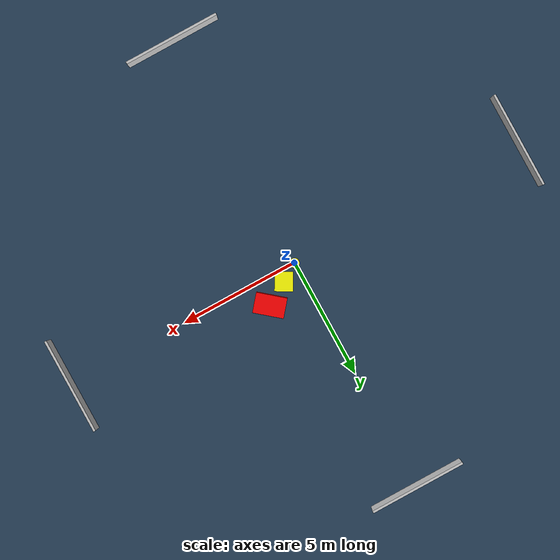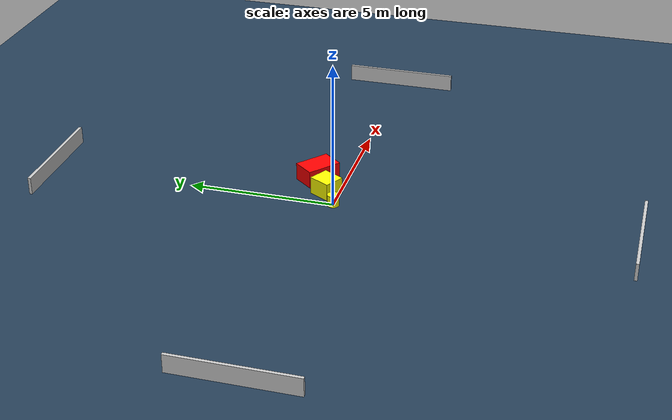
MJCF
<?xml version="1.0" ?>
<mujoco model="generated_environment">
  <option timestep="0.01" integrator="RK4" cone="elliptic"/>
  <default>
    <geom density="1"/>
  </default>
  <asset>
    <texture builtin="gradient" height="3072" name="skybox" rgb1="0.3 0.5 0.7" rgb2="0 0 0" type="skybox" width="512"/>
    <texture builtin="checker" height="300" name="groundplane" rgb1="0.2 0.3 0.4" rgb2="0.1 0.2 0.3" type="2d" width="300"/>
    <material name="groundplane" reflectance="0.2" texrepeat="5 5" texture="groundplane"/>
  </asset>
  <worldbody>
    <light dir="0 0 -1" directional="true" pos="0 0 1.5"/>
    <geom condim="3" friction="0.5 0.005 0.001" material="groundplane" name="floor" pos="0 0 0" size="0 0 0.05" type="plane"/>
    <body name="walls">
      <geom name="wall_1" condim="4" pos="-10.0 0.0 0.3" rgba="0.800000011920929 0.800000011920929 0.800000011920929 1.0" size="0.05 2.0 0.3" type="box"/>
      <geom name="wall_2" condim="4" pos="10.0 0.0 0.3" rgba="0.800000011920929 0.800000011920929 0.800000011920929 1.0" size="0.05 2.0 0.3" type="box"/>
      <geom name="wall_3" condim="4" pos="0.0 -10.0 0.3" rgba="0.800000011920929 0.800000011920929 0.800000011920929 1.0" size="2.0 0.05 0.3" type="box"/>
      <geom name="wall_4" condim="4" pos="0.0 10.0 0.3" rgba="0.800000011920929 0.800000011920929 0.800000011920929 1.0" size="2.0 0.05 0.3" type="box"/>
    </body>
    <body name="robot">
      <joint name="joint_x" type="slide" pos="0 0 0" axis="1 0 0"/>
      <joint name="joint_y" type="slide" pos="0 0 0" axis="0 1 0"/>
      <geom name="robot" type="cylinder" pos="0.0 0.0 0.2" size="0.2 0.2 0.0" mass="5.0" friction="1.0 0.005 0.0001" condim="4" rgba="1.0 1.0 0.0 1.0"/>
    </body>
    <body name="obstacle_1_movable">
      <geom name="obstacle_1_movable" condim="4" pos="0.714123296643092 0.43283037223645626 0.3" euler="0 0 150.21577577358426" friction="0.0 0.005 0.001" rgba="1.0 1.0 0.0 1.0" size="0.3624546077782741 0.38847868857249546 0.3" type="box" mass="0.1"/>
      <joint type="free"/>
    </body>
    <body name="obstacle_2_static">
      <geom name="obstacle_2_static" condim="4" pos="1.6403573513960865 0.9897011485437821 0.3" euler="0 0 320.3673654346315" friction="0.0 0.005 0.001" rgba="1.0 0.0 0.0 1.0" size="0.6210228084041197 0.4070605385868399 0.3" type="box"/>
    </body>
  </worldbody>
  <actuator>
    <motor name="actuator_x" joint="joint_x" gear="1" ctrlrange="-1 1"/>
    <motor name="actuator_y" joint="joint_y" gear="1" ctrlrange="-1 1"/>
  </actuator>
</mujoco>
